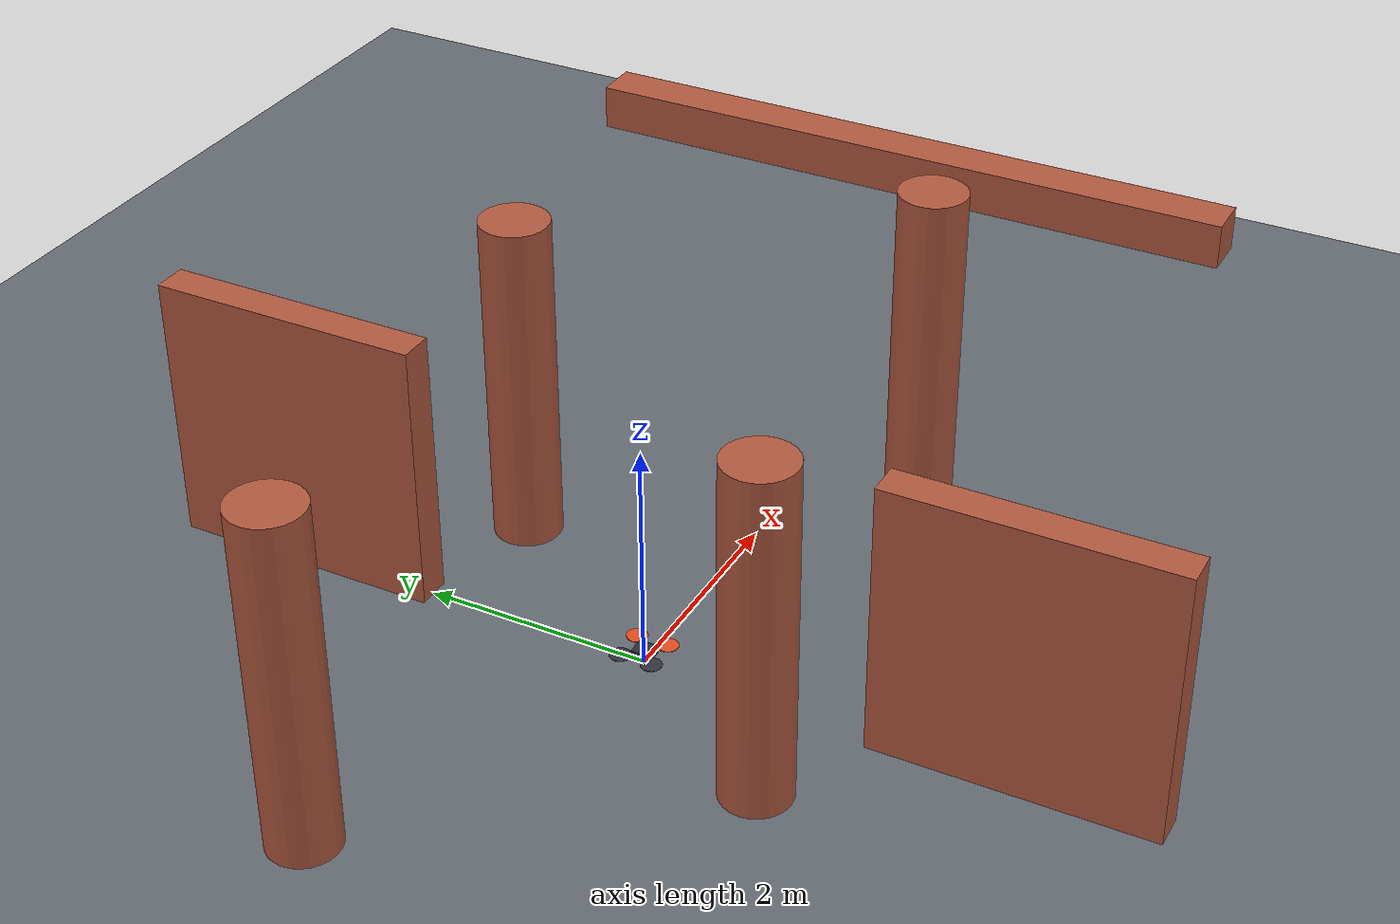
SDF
<?xml version="1.0"?>
<!-- Obstacle course. Generated with config/obstacles_pillars.yaml from one source list. See scripts/gen_assets.py. -->
<sdf version="1.9">
  <world name="drone_pillars">
    <physics name="step" type="ignored">
      <max_step_size>0.001</max_step_size>
      <real_time_factor>1.0</real_time_factor>
    </physics>
    <plugin filename="gz-sim-physics-system" name="gz::sim::systems::Physics"/>
    <plugin filename="gz-sim-user-commands-system" name="gz::sim::systems::UserCommands"/>
    <plugin filename="gz-sim-scene-broadcaster-system" name="gz::sim::systems::SceneBroadcaster"/>
    <plugin filename="gz-sim-contact-system" name="gz::sim::systems::Contact"/>
    <plugin filename="gz-sim-imu-system" name="gz::sim::systems::Imu"/>
    <plugin filename="gz-sim-apply-link-wrench-system"
            name="gz::sim::systems::ApplyLinkWrench"/>
    <scene>
      <ambient>0.6 0.6 0.6 1</ambient>
      <background>0.75 0.82 0.9 1</background>
      <grid>true</grid>
    </scene>
    <light type="directional" name="sun">
      <cast_shadows>true</cast_shadows>
      <pose>0 0 10 0 0 0</pose>
      <diffuse>0.9 0.9 0.9 1</diffuse>
      <specular>0.2 0.2 0.2 1</specular>
      <direction>-0.5 0.3 -0.9</direction>
    </light>
    <model name="ground_plane">
      <static>true</static>
      <link name="link">
        <collision name="collision">
          <geometry><plane><normal>0 0 1</normal><size>100 100</size></plane></geometry>
        </collision>
        <visual name="visual">
          <geometry><plane><normal>0 0 1</normal><size>100 100</size></plane></geometry>
          <material>
            <ambient>0.3 0.32 0.35 1</ambient><diffuse>0.4 0.42 0.45 1</diffuse>
          </material>
        </visual>
      </link>
    </model>

    <model name="pillar_a">
      <static>true</static>
      <pose>-3.0 1.2 1.5 0 0 0</pose>
      <link name="link">
        <collision name="collision"><geometry><cylinder><radius>0.3</radius><length>3.0</length></cylinder></geometry></collision>
        <visual name="visual">
          <geometry><cylinder><radius>0.3</radius><length>3.0</length></cylinder></geometry>
          <material>
            <ambient>0.55 0.27 0.20 1</ambient><diffuse>0.70 0.35 0.25 1</diffuse>
          </material>
        </visual>
      </link>
    </model>
    <model name="pillar_b">
      <static>true</static>
      <pose>-1.0 -1.5 1.5 0 0 0</pose>
      <link name="link">
        <collision name="collision"><geometry><cylinder><radius>0.3</radius><length>3.0</length></cylinder></geometry></collision>
        <visual name="visual">
          <geometry><cylinder><radius>0.3</radius><length>3.0</length></cylinder></geometry>
          <material>
            <ambient>0.55 0.27 0.20 1</ambient><diffuse>0.70 0.35 0.25 1</diffuse>
          </material>
        </visual>
      </link>
    </model>
    <model name="pillar_c">
      <static>true</static>
      <pose>1.2 1.8 1.5 0 0 0</pose>
      <link name="link">
        <collision name="collision"><geometry><cylinder><radius>0.3</radius><length>3.0</length></cylinder></geometry></collision>
        <visual name="visual">
          <geometry><cylinder><radius>0.3</radius><length>3.0</length></cylinder></geometry>
          <material>
            <ambient>0.55 0.27 0.20 1</ambient><diffuse>0.70 0.35 0.25 1</diffuse>
          </material>
        </visual>
      </link>
    </model>
    <model name="pillar_d">
      <static>true</static>
      <pose>3.2 -1.0 1.5 0 0 0</pose>
      <link name="link">
        <collision name="collision"><geometry><cylinder><radius>0.3</radius><length>3.0</length></cylinder></geometry></collision>
        <visual name="visual">
          <geometry><cylinder><radius>0.3</radius><length>3.0</length></cylinder></geometry>
          <material>
            <ambient>0.55 0.27 0.20 1</ambient><diffuse>0.70 0.35 0.25 1</diffuse>
          </material>
        </visual>
      </link>
    </model>
    <model name="wall_gap_l">
      <static>true</static>
      <pose>0.0 3.2 1.2 0 0 0</pose>
      <link name="link">
        <collision name="collision"><geometry><box><size>0.3 2.4 2.4</size></box></geometry></collision>
        <visual name="visual">
          <geometry><box><size>0.3 2.4 2.4</size></box></geometry>
          <material>
            <ambient>0.55 0.27 0.20 1</ambient><diffuse>0.70 0.35 0.25 1</diffuse>
          </material>
        </visual>
      </link>
    </model>
    <model name="wall_gap_r">
      <static>true</static>
      <pose>0.0 -3.2 1.2 0 0 0</pose>
      <link name="link">
        <collision name="collision"><geometry><box><size>0.3 2.4 2.4</size></box></geometry></collision>
        <visual name="visual">
          <geometry><box><size>0.3 2.4 2.4</size></box></geometry>
          <material>
            <ambient>0.55 0.27 0.20 1</ambient><diffuse>0.70 0.35 0.25 1</diffuse>
          </material>
        </visual>
      </link>
    </model>
    <model name="low_beam">
      <static>true</static>
      <pose>5.0 0.0 2.2 0 0 0</pose>
      <link name="link">
        <collision name="collision"><geometry><box><size>0.4 6.0 0.4</size></box></geometry></collision>
        <visual name="visual">
          <geometry><box><size>0.4 6.0 0.4</size></box></geometry>
          <material>
            <ambient>0.55 0.27 0.20 1</ambient><diffuse>0.70 0.35 0.25 1</diffuse>
          </material>
        </visual>
      </link>
    </model>
    <include>
      <uri>model://drone</uri>
      <name>drone</name>
      <pose>0.0 0.0 0.1 0 0 0</pose>
    </include>
  </world>
</sdf>

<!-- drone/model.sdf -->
<sdf version="1.9">
  <model name="drone">
    <pose>0 0 0.1 0 0 0</pose>

    <link name="base_link">
      <inertial>
        <mass>1.48</mass>
        <inertia>
          <ixx>0.015</ixx><ixy>0</ixy><ixz>0</ixz>
          <iyy>0.015</iyy><iyz>0</iyz><izz>0.025</izz>
        </inertia>
      </inertial>

      <visual name="body_visual">
        <geometry><box><size>0.16 0.16 0.08</size></box></geometry>
        <material>
          <ambient>0.1 0.1 0.12 1</ambient><diffuse>0.18 0.18 0.22 1</diffuse>
        </material>
      </visual>

      <!-- Collision is the 0.3 m envelope, not the small body box:
           this is the volume a path planner has to keep clear. -->
      <collision name="envelope">
        <geometry><cylinder><radius>0.3</radius><length>0.08</length></cylinder></geometry>
        <surface>
          <friction><ode><mu>0.6</mu><mu2>0.6</mu2></ode></friction>
        </surface>
      </collision>

      <sensor name="crash_contact" type="contact">
        <always_on>1</always_on>
        <update_rate>200</update_rate>
        <contact><collision>envelope</collision></contact>
      </sensor>

      <sensor name="imu_sensor" type="imu">
        <always_on>1</always_on>
        <update_rate>250</update_rate>
        <topic>drone/imu</topic>
        <imu>
          <angular_velocity>
            <x>
              <noise type="gaussian">
                <mean>0.0</mean>
                <stddev>0.001</stddev>
                <bias_mean>0.0002</bias_mean>
                <bias_stddev>5e-05</bias_stddev>
                <dynamic_bias_stddev>1e-05</dynamic_bias_stddev>
                <dynamic_bias_correlation_time>300.0</dynamic_bias_correlation_time>
              </noise>
            </x>
            <y>
              <noise type="gaussian">
                <mean>0.0</mean>
                <stddev>0.001</stddev>
                <bias_mean>0.0002</bias_mean>
                <bias_stddev>5e-05</bias_stddev>
                <dynamic_bias_stddev>1e-05</dynamic_bias_stddev>
                <dynamic_bias_correlation_time>300.0</dynamic_bias_correlation_time>
              </noise>
            </y>
            <z>
              <noise type="gaussian">
                <mean>0.0</mean>
                <stddev>0.001</stddev>
                <bias_mean>0.0002</bias_mean>
                <bias_stddev>5e-05</bias_stddev>
                <dynamic_bias_stddev>1e-05</dynamic_bias_stddev>
                <dynamic_bias_correlation_time>300.0</dynamic_bias_correlation_time>
              </noise>
            </z>
          </angular_velocity>
          <linear_acceleration>
            <x>
              <noise type="gaussian">
                <mean>0.0</mean>
                <stddev>0.044</stddev>
                <bias_mean>0.02</bias_mean>
                <bias_stddev>0.005</bias_stddev>
                <dynamic_bias_stddev>0.001</dynamic_bias_stddev>
                <dynamic_bias_correlation_time>300.0</dynamic_bias_correlation_time>
              </noise>
            </x>
            <y>
              <noise type="gaussian">
                <mean>0.0</mean>
                <stddev>0.044</stddev>
                <bias_mean>0.02</bias_mean>
                <bias_stddev>0.005</bias_stddev>
                <dynamic_bias_stddev>0.001</dynamic_bias_stddev>
                <dynamic_bias_correlation_time>300.0</dynamic_bias_correlation_time>
              </noise>
            </y>
            <z>
              <noise type="gaussian">
                <mean>0.0</mean>
                <stddev>0.044</stddev>
                <bias_mean>0.02</bias_mean>
                <bias_stddev>0.005</bias_stddev>
                <dynamic_bias_stddev>0.001</dynamic_bias_stddev>
                <dynamic_bias_correlation_time>300.0</dynamic_bias_correlation_time>
              </noise>
            </z>
          </linear_acceleration>
        </imu>
      </sensor>
    </link>

    <link name="rotor_0">
      <pose>0.141421 0.141421 0.02 0 0 0</pose>
      <inertial>
        <mass>0.005</mass>
        <inertia>
          <ixx>1.0e-06</ixx><ixy>0</ixy><ixz>0</ixz>
          <iyy>1.7e-05</iyy><iyz>0</iyz><izz>1.7e-05</izz>
        </inertia>
      </inertial>
      <visual name="rotor_0_visual">
        <geometry><cylinder><radius>0.09</radius><length>0.006</length></cylinder></geometry>
        <material>
          <ambient>0.9 0.3 0.1 1</ambient><diffuse>0.9 0.3 0.1 1</diffuse>
        </material>
      </visual>
    </link>
    <joint name="rotor_0_joint" type="revolute">
      <parent>base_link</parent>
      <child>rotor_0</child>
      <axis>
        <xyz>0 0 1</xyz>
        <limit><lower>-1e16</lower><upper>1e16</upper></limit>
        <dynamics><damping>0.0</damping></dynamics>
      </axis>
    </joint>
    <link name="rotor_1">
      <pose>-0.141421 -0.141421 0.02 0 0 0</pose>
      <inertial>
        <mass>0.005</mass>
        <inertia>
          <ixx>1.0e-06</ixx><ixy>0</ixy><ixz>0</ixz>
          <iyy>1.7e-05</iyy><iyz>0</iyz><izz>1.7e-05</izz>
        </inertia>
      </inertial>
      <visual name="rotor_1_visual">
        <geometry><cylinder><radius>0.09</radius><length>0.006</length></cylinder></geometry>
        <material>
          <ambient>0.2 0.2 0.25 1</ambient><diffuse>0.2 0.2 0.25 1</diffuse>
        </material>
      </visual>
    </link>
    <joint name="rotor_1_joint" type="revolute">
      <parent>base_link</parent>
      <child>rotor_1</child>
      <axis>
        <xyz>0 0 1</xyz>
        <limit><lower>-1e16</lower><upper>1e16</upper></limit>
        <dynamics><damping>0.0</damping></dynamics>
      </axis>
    </joint>
    <link name="rotor_2">
      <pose>0.141421 -0.141421 0.02 0 0 0</pose>
      <inertial>
        <mass>0.005</mass>
        <inertia>
          <ixx>1.0e-06</ixx><ixy>0</ixy><ixz>0</ixz>
          <iyy>1.7e-05</iyy><iyz>0</iyz><izz>1.7e-05</izz>
        </inertia>
      </inertial>
      <visual name="rotor_2_visual">
        <geometry><cylinder><radius>0.09</radius><length>0.006</length></cylinder></geometry>
        <material>
          <ambient>0.9 0.3 0.1 1</ambient><diffuse>0.9 0.3 0.1 1</diffuse>
        </material>
      </visual>
    </link>
    <joint name="rotor_2_joint" type="revolute">
      <parent>base_link</parent>
      <child>rotor_2</child>
      <axis>
        <xyz>0 0 1</xyz>
        <limit><lower>-1e16</lower><upper>1e16</upper></limit>
        <dynamics><damping>0.0</damping></dynamics>
      </axis>
    </joint>
    <link name="rotor_3">
      <pose>-0.141421 0.141421 0.02 0 0 0</pose>
      <inertial>
        <mass>0.005</mass>
        <inertia>
          <ixx>1.0e-06</ixx><ixy>0</ixy><ixz>0</ixz>
          <iyy>1.7e-05</iyy><iyz>0</iyz><izz>1.7e-05</izz>
        </inertia>
      </inertial>
      <visual name="rotor_3_visual">
        <geometry><cylinder><radius>0.09</radius><length>0.006</length></cylinder></geometry>
        <material>
          <ambient>0.2 0.2 0.25 1</ambient><diffuse>0.2 0.2 0.25 1</diffuse>
        </material>
      </visual>
    </link>
    <joint name="rotor_3_joint" type="revolute">
      <parent>base_link</parent>
      <child>rotor_3</child>
      <axis>
        <xyz>0 0 1</xyz>
        <limit><lower>-1e16</lower><upper>1e16</upper></limit>
        <dynamics><damping>0.0</damping></dynamics>
      </axis>
    </joint>

    <plugin filename="gz-sim-multicopter-motor-model-system"
            name="gz::sim::systems::MulticopterMotorModel">
      <robotNamespace>drone</robotNamespace>
      <jointName>rotor_0_joint</jointName>
      <linkName>rotor_0</linkName>
      <turningDirection>ccw</turningDirection>
      <timeConstantUp>0.02</timeConstantUp>
      <timeConstantDown>0.03</timeConstantDown>
      <maxRotVelocity>1000.0</maxRotVelocity>
      <motorConstant>9e-06</motorConstant>
      <momentConstant>0.016</momentConstant>
      <commandSubTopic>command/motor_speed</commandSubTopic>
      <motorNumber>0</motorNumber>
      <rotorDragCoefficient>8.06428e-05</rotorDragCoefficient>
      <rollingMomentCoefficient>1e-06</rollingMomentCoefficient>
      <motorSpeedPubTopic>motor_speed/0</motorSpeedPubTopic>
      <rotorVelocitySlowdownSim>10</rotorVelocitySlowdownSim>
    </plugin>
    <plugin filename="gz-sim-multicopter-motor-model-system"
            name="gz::sim::systems::MulticopterMotorModel">
      <robotNamespace>drone</robotNamespace>
      <jointName>rotor_1_joint</jointName>
      <linkName>rotor_1</linkName>
      <turningDirection>ccw</turningDirection>
      <timeConstantUp>0.02</timeConstantUp>
      <timeConstantDown>0.03</timeConstantDown>
      <maxRotVelocity>1000.0</maxRotVelocity>
      <motorConstant>9e-06</motorConstant>
      <momentConstant>0.016</momentConstant>
      <commandSubTopic>command/motor_speed</commandSubTopic>
      <motorNumber>1</motorNumber>
      <rotorDragCoefficient>8.06428e-05</rotorDragCoefficient>
      <rollingMomentCoefficient>1e-06</rollingMomentCoefficient>
      <motorSpeedPubTopic>motor_speed/1</motorSpeedPubTopic>
      <rotorVelocitySlowdownSim>10</rotorVelocitySlowdownSim>
    </plugin>
    <plugin filename="gz-sim-multicopter-motor-model-system"
            name="gz::sim::systems::MulticopterMotorModel">
      <robotNamespace>drone</robotNamespace>
      <jointName>rotor_2_joint</jointName>
      <linkName>rotor_2</linkName>
      <turningDirection>cw</turningDirection>
      <timeConstantUp>0.02</timeConstantUp>
      <timeConstantDown>0.03</timeConstantDown>
      <maxRotVelocity>1000.0</maxRotVelocity>
      <motorConstant>9e-06</motorConstant>
      <momentConstant>0.016</momentConstant>
      <commandSubTopic>command/motor_speed</commandSubTopic>
      <motorNumber>2</motorNumber>
      <rotorDragCoefficient>8.06428e-05</rotorDragCoefficient>
      <rollingMomentCoefficient>1e-06</rollingMomentCoefficient>
      <motorSpeedPubTopic>motor_speed/2</motorSpeedPubTopic>
      <rotorVelocitySlowdownSim>10</rotorVelocitySlowdownSim>
    </plugin>
    <plugin filename="gz-sim-multicopter-motor-model-system"
            name="gz::sim::systems::MulticopterMotorModel">
      <robotNamespace>drone</robotNamespace>
      <jointName>rotor_3_joint</jointName>
      <linkName>rotor_3</linkName>
      <turningDirection>cw</turningDirection>
      <timeConstantUp>0.02</timeConstantUp>
      <timeConstantDown>0.03</timeConstantDown>
      <maxRotVelocity>1000.0</maxRotVelocity>
      <motorConstant>9e-06</motorConstant>
      <momentConstant>0.016</momentConstant>
      <commandSubTopic>command/motor_speed</commandSubTopic>
      <motorNumber>3</motorNumber>
      <rotorDragCoefficient>8.06428e-05</rotorDragCoefficient>
      <rollingMomentCoefficient>1e-06</rollingMomentCoefficient>
      <motorSpeedPubTopic>motor_speed/3</motorSpeedPubTopic>
      <rotorVelocitySlowdownSim>10</rotorVelocitySlowdownSim>
    </plugin>

    <plugin filename="gz-sim-odometry-publisher-system"
            name="gz::sim::systems::OdometryPublisher">
      <odom_frame>world</odom_frame>
      <robot_base_frame>drone</robot_base_frame>
      <dimensions>3</dimensions>
      <odom_publish_frequency>250</odom_publish_frequency>
      <odom_topic>/model/drone/odometry_truth</odom_topic>
    </plugin>
  </model>
</sdf>
